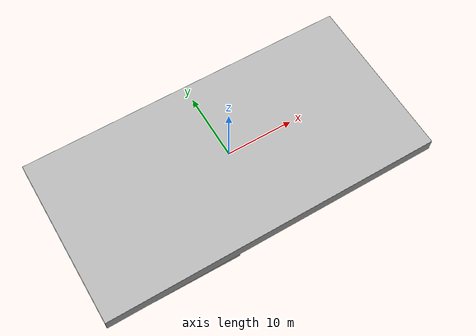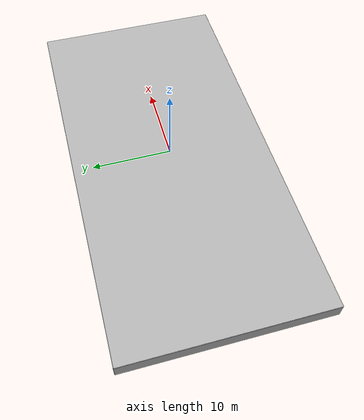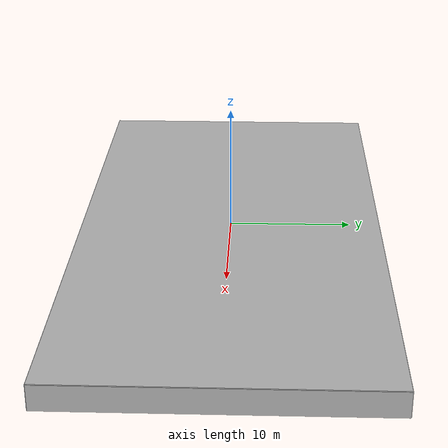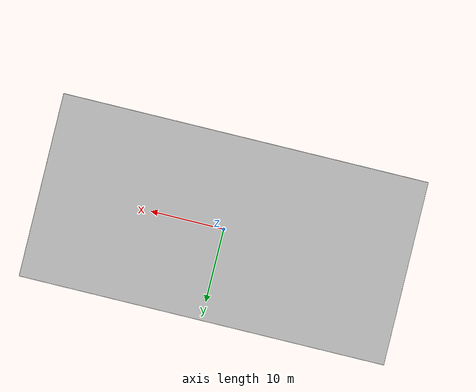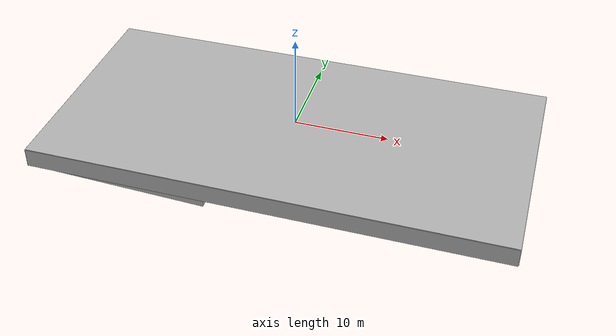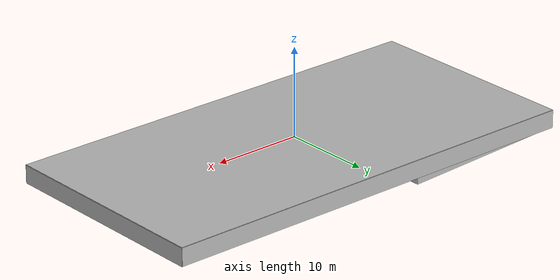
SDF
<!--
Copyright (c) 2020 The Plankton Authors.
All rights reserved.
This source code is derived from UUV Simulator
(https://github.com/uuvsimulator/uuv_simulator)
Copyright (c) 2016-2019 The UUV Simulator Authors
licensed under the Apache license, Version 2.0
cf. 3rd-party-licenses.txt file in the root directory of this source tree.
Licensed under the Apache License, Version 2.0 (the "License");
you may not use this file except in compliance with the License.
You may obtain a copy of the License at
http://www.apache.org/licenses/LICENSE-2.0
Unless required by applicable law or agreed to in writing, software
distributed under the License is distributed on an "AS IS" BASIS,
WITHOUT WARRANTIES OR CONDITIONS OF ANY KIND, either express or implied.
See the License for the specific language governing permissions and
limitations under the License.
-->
<?xml version="1.0" ?>
<sdf version="1.5">
  <world name="default">
    <physics name="default_physics" default="true" type="ode">
      <max_step_size>0.01</max_step_size>
      <real_time_factor>1</real_time_factor>
      <real_time_update_rate>100</real_time_update_rate>
      <ode>
        <solver>
          <type>quick</type>
          <iters>50</iters>
          <sor>1.2</sor>
        </solver>
      </ode>
    </physics>
    <scene>
      <ambient>0.2 0.2 0.2 1.0</ambient>
      <sky>
        <time>12</time>
        <clouds>
          <speed>12</speed>
        </clouds>
      </sky>
      <shadows>false</shadows>
      <fog>
        <color>0.1 0.2 0.3 1.0</color>
        <type>linear</type>
        <density>0.003</density>
        <start>10</start>
        <end>25</end>
      </fog>
      <grid>0</grid>
    </scene>

    <!-- Origin placed at Singapore Poly Swimming Pool  -->
    <spherical_coordinates>
      <latitude_deg>1.309562</latitude_deg>
      <longitude_deg>103.7745783</longitude_deg>
    </spherical_coordinates>

    <!-- Global light source -->
    <light type="directional" name="sun1">
      <cast_shadows>true</cast_shadows>
      <pose>-20 -20 20 0 0 0</pose>
      <diffuse>0.5 0.5 0.5 1</diffuse>
      <specular>0.2 0.2 0.2 1</specular>
      <attenuation>
        <range>40</range>
        <constant>0.9</constant>
        <linear>0.01</linear>
        <quadratic>0.001</quadratic>
      </attenuation>
      <direction>-0.5 0.1 -0.9</direction>
    </light>

    <!-- Global light source -->
    <light type="directional" name="sun2">
      <cast_shadows>true</cast_shadows>
      <pose>20 -20 20 0 0 0</pose>
      <diffuse>0.5 0.5 0.5 1</diffuse>
      <specular>0.2 0.2 0.2 1</specular>
      <attenuation>
        <range>40</range>
        <constant>0.9</constant>
        <linear>0.01</linear>
        <quadratic>0.001</quadratic>
      </attenuation>
      <direction>-0.5 0.1 -0.9</direction>
    </light>

    <light type="directional" name="sun3">
      <cast_shadows>true</cast_shadows>
      <pose>-20 20 20 0 0 0</pose>
      <diffuse>0.5 0.5 0.5 1</diffuse>
      <specular>0.2 0.2 0.2 1</specular>
      <attenuation>
        <range>40</range>
        <constant>0.9</constant>
        <linear>0.01</linear>
        <quadratic>0.001</quadratic>
      </attenuation>
      <direction>-0.5 0.1 -0.9</direction>
    </light>

    <light type="directional" name="sun4">
      <cast_shadows>true</cast_shadows>
      <pose>20 20 20 0 0 0</pose>
      <diffuse>0.5 0.5 0.5 1</diffuse>
      <specular>0.2 0.2 0.2 1</specular>
      <attenuation>
        <range>40</range>
        <constant>0.9</constant>
        <linear>0.01</linear>
        <quadratic>0.001</quadratic>
      </attenuation>
      <direction>-0.5 0.1 -0.9</direction>
    </light>

    <!-- Bounding box with sea surface -->
    <include>
      <uri>model://swimming_pool</uri>
      <pose>0 0 0 0 0 0</pose>
    </include>

    <include>
      <uri>model://red_flare</uri>
      <pose>6 -4 -2 0 0 0</pose>
    </include>

    <include>
      <uri>model://gate</uri>
      <pose>6 -.6 -2 0 0 0</pose>
    </include>

    <include>
      <name>yellow_flare_1</name>
      <uri>model://yellow_flare</uri>
      <pose>12 6 -2 0 0 0</pose>
    </include>

    <include>
      <name>yellow_flare_2</name>
      <uri>model://yellow_flare</uri>
      <pose>12 4.5 -2 0 0 0</pose>
    </include>

    <include>
      <uri>model://target_acquistion_area</uri>
      <pose>6  9 -1.95 0 0 0</pose>
    </include>

    <include>
      <name>qualification_gate_1</name>
      <uri>model://qualification_gate</uri>
      <pose>-15 8.5 0 0 0 0</pose>
    </include>
    <include>
      <name>qualification_gate_2</name>
      <uri>model://qualification_gate</uri>
      <pose>-15 -8.5 0 0 0 0</pose>
    </include>

    <plugin name="gazebo_ros" filename="libgazebo_ros_state.so">
      <ros>
        <namespace>/gazebo</namespace>
      </ros>
    </plugin>

    <plugin name="underwater_current_plugin" filename="libuuv_underwater_current_ros_plugin.so">
      <namespace>hydrodynamics</namespace>
      <constant_current>
        <topic>current_velocity</topic>
        <velocity>
          <mean>0</mean>
          <min>0</min>
          <max>5</max>
          <mu>0.0</mu>
          <noiseAmp>0.0</noiseAmp>
        </velocity>

        <horizontal_angle>
          <mean>0</mean>
          <min>-3.141592653589793238</min>
          <max>3.141592653589793238</max>
          <mu>0.0</mu>
          <noiseAmp>0.0</noiseAmp>
        </horizontal_angle>

        <vertical_angle>
          <mean>0</mean>
          <min>-3.141592653589793238</min>
          <max>3.141592653589793238</max>
          <mu>0.0</mu>
          <noiseAmp>0.0</noiseAmp>
        </vertical_angle>
      </constant_current>
    </plugin>

    <plugin name="sc_interface" filename="libuuv_sc_ros_interface_plugin.so"/>

    <gui fullscreen='0'>
      <camera name='user_camera'>
        <pose frame=''>0 0 0 0 0 0.5</pose>
        <view_controller>orbit</view_controller>
        <projection_type>perspective</projection_type>
      </camera>
    </gui>
  </world>
</sdf>

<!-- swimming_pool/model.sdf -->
<sdf version="1.5">
  <model name="swimming_pool">
    <static>true</static>
    <link name="link">

      <visual name="ground1">
        <cast_shadows>false</cast_shadows>
        <pose>-24.1 -0 -1.64 0 0 0</pose>
        <geometry>
          <box>
            <size>1.8 25 .72</size>
          </box>
        </geometry>
        <material>
          <script>
            <uri>file://media/materials/scripts/ground_1.material</uri>
            <name>SAUVC2019/FloorTiles1</name>
          </script>
        </material>
      </visual>

      <collision name="ground1">
        <pose>-24.1 -0 -1.64 0 0 0</pose>
        <geometry>
          <box>
            <size>1.8 25 .72</size>
          </box>
        </geometry>
      </collision>

      <visual name="ground2">
        <cast_shadows>false</cast_shadows>
        <pose>-14.465 0 -1.9997  0 0.041119666044899805 0</pose>
        <geometry>
          <box>
            <size>17.514805165916062 25 .72</size>
          </box>
        </geometry>
        <material>
          <script>
            <uri>file://media/materials/scripts/ground_2.material</uri>
            <name>SAUVC2019/FloorTiles2</name>
          </script>
        </material>
      </visual>

      <collision name="ground2">
        <pose>-14.465 0 -1.9997  0 0.041119666044899805 0</pose>
        <geometry>
          <box>
            <size>17.514805165916062 25 .72</size>
          </box>
        </geometry>
      </collision>

      <visual name="ground3">
        <cast_shadows>false</cast_shadows>
        <pose>9.65 0 -2.01 0 0 0</pose>
        <geometry>
          <box>
            <size>30.7 25 0.005</size>
          </box>
        </geometry>
        <material>
          <script>
            <uri>file://media/materials/scripts/ground_3.material</uri>
            <name>SAUVC2019/FloorTiles3</name>
          </script>
        </material>
      </visual>

      <collision name="ground3">
        <pose>9.65 0 -2.01 0 0 0</pose>
        <geometry>
          <box>
            <size>30.7 25 0.005</size>
          </box>
        </geometry>
      </collision>

      <visual name="surface">
        <cast_shadows>false</cast_shadows>
        <pose>0 0 0 0 0 0</pose>
        <geometry>
          <box>
            <size>50 25 .1</size>
          </box>
        </geometry>
        <material>
          <script>
            <uri>file://media/materials/scripts/water.material</uri>
            <name>SAUVC2019/StaticWater</name>
          </script>
        </material>
      </visual>

      <visual name="north">
        <cast_shadows>false</cast_shadows>
        <pose>25 0 -1 0 0 0</pose>
        <geometry>
          <box>
            <size>.1 25 2</size>
          </box>
        </geometry>
        <material>
          <script>
            <uri>file://media/materials/scripts/short_wall_tiles.material</uri>
            <name>SAUVC2019/ShortWallTiles</name>
          </script>
        </material>
      </visual>

      <visual name="south">
        <cast_shadows>false</cast_shadows>
        <pose>-25 0 -1 0 0 0</pose>
        <geometry>
          <box>
            <size>.1 25 2</size>
          </box>
        </geometry>
        <material>
          <script>
            <uri>file://media/materials/scripts/short_wall_tiles.material</uri>
            <name>SAUVC2019/ShortWallTiles</name>
          </script>
        </material>
      </visual>

      <visual name="east">
        <cast_shadows>false</cast_shadows>
        <pose>0 -12.5 -1 0 0 0</pose>
        <geometry>
          <box>
            <size>50 .1 2</size>
          </box>
        </geometry>
        <material>
          <script>
            <uri>file://media/materials/scripts/long_wall_tiles.material</uri>
            <name>SAUVC2019/LongWallTiles</name>
          </script>
        </material>
      </visual>

      <visual name="west">
        <cast_shadows>false</cast_shadows>
        <pose>0 12.5 -1 0 0 0</pose>
        <geometry>
          <box>
            <size>50 .1 2</size>
          </box>
        </geometry>
        <material>
          <script>
            <uri>file://media/materials/scripts/long_wall_tiles.material</uri>
            <name>SAUVC2019/LongWallTiles</name>
          </script>
        </material>
      </visual>
    </link>
  </model>
</sdf>

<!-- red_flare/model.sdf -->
<sdf version="1.5">
  <model name="red_flare">
    <static>false</static>
    <link name="link">

      <collision name="flare">
        <pose>0 0 0.75 0 0 0</pose>
        <geometry>
          <cylinder>
            <radius>0.075</radius>
            <length>1.5</length>
          </cylinder>
        </geometry>
      </collision>

      <visual name="flare">
        <cast_shadows>false</cast_shadows>
        <pose>0 0 0.75 0 0 0</pose>
        <geometry>
          <cylinder>
            <radius>0.075</radius>
            <length>1.5</length>
          </cylinder>
        </geometry>
        <material>
          <script>
            <uri>file://media/materials/scripts/colors.material</uri>
            <name>SAUVC/Red</name>
          </script>
        </material>
      </visual>

    </link>
  </model>
</sdf>

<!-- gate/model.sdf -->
<sdf version="1.5">
  <model name="gate">
    <static>true</static>
    <link name="link">

      <collision name="left">
        <pose>-0.75 0 0.75 0 0 0</pose>
        <geometry>
          <cylinder>
            <radius>0.02</radius>
            <length>1.5</length>
          </cylinder>
        </geometry>
      </collision>

      <collision name="right">
        <pose>0.75 0 0.75 0 0 0</pose>
        <geometry>
          <cylinder>
            <radius>0.02</radius>
            <length>1.5</length>
          </cylinder>
        </geometry>
      </collision>

      <collision name="top">
        <pose>0 0 1.48 0 1.57 0</pose>
        <geometry>
          <cylinder>
            <radius>0.02</radius>
            <length>1.5</length>
          </cylinder>
        </geometry>
      </collision>

      <visual name="left">
        <cast_shadows>false</cast_shadows>
        <pose>-0.75 0 0.75 0 0 0</pose>
        <geometry>
          <cylinder>
            <radius>0.02</radius>
            <length>1.5</length>
          </cylinder>
        </geometry>
        <material>
          <script>
            <uri>file://media/materials/scripts/colors.material</uri>
            <name>SAUVC/Red</name>
          </script>
        </material>
      </visual>

      <visual name="right">
        <cast_shadows>false</cast_shadows>
        <pose>0.75 0 0.75 0 0 0</pose>
        <geometry>
          <cylinder>
            <radius>0.02</radius>
            <length>1.5</length>
          </cylinder>
        </geometry>
        <material>
          <script>
            <uri>file://media/materials/scripts/colors.material</uri>
            <name>SAUVC/Green</name>
          </script>
        </material>
      </visual>

      <visual name="top">
        <cast_shadows>false</cast_shadows>
        <pose>0 0 1.48 0 1.57 0</pose>
        <geometry>
          <cylinder>
            <radius>0.02</radius>
            <length>1.5</length>
          </cylinder>
        </geometry>
        <material>
          <script>
            <uri>file://media/materials/scripts/colors.material</uri>
            <name>SAUVC/Black</name>
          </script>
        </material>
      </visual>

      <visual name="bottom">
        <cast_shadows>false</cast_shadows>
        <pose>0 0 .05 0 0 0</pose>
        <geometry>
          <box>
            <size>1.8 .4 .02</size>
          </box>
        </geometry>
        <material>
          <script>
            <uri>file://media/materials/scripts/colors.material</uri>
            <name>SAUVC/Yellow</name>
          </script>
        </material>
      </visual>

    </link>
  </model>
</sdf>

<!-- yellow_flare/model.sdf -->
<sdf version="1.5">
  <model name="yellow_flare">
    <static>false</static>
    <link name="link">

      <collision name="flare">
        <pose>0 0 0.4 0 0 0</pose>
        <geometry>
          <cylinder>
            <radius>0.02</radius>
            <length>0.8</length>
          </cylinder>
        </geometry>
      </collision>

      <visual name="flare">
        <cast_shadows>false</cast_shadows>
        <pose>0 0 0.4 0 0 0</pose>
        <geometry>
          <cylinder>
            <radius>0.02</radius>
            <length>0.8</length>
          </cylinder>
        </geometry>
        <material>
          <script>
            <uri>file://media/materials/scripts/colors.material</uri>
            <name>SAUVC/Yellow</name>
          </script>
        </material>
      </visual>

      <visual name="ball">
        <cast_shadows>false</cast_shadows>
        <pose>0 0 0.82 0 0 0</pose>
        <geometry>
          <sphere>
            <radius>0.03</radius>
          </sphere>
        </geometry>
        <material>
          <script>
            <uri>file://media/materials/scripts/colors.material</uri>
            <name>SAUVC/White</name>
          </script>
        </material>
      </visual>

      <visual name="stand">
        <cast_shadows>false</cast_shadows>
        <pose>0 0 0.01 0 0 0</pose>
        <geometry>
          <cylinder>
            <radius>0.1</radius>
            <length>0.02</length>
          </cylinder>
        </geometry>
        <material>
          <script>
            <uri>file://media/materials/scripts/colors.material</uri>
            <name>SAUVC/Yellow</name>
          </script>
        </material>
      </visual>

    </link>
  </model>
</sdf>

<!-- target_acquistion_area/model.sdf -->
<sdf version="1.5">
  <model name="target_acquistion_area">
    <static>true</static>
    <link name="link">

      <visual name="target_acquistion_area">
        <cast_shadows>false</cast_shadows>
        <pose>0 0 .005 0 0 0</pose>
        <geometry>
          <box>
            <size>8 2 .01</size>
          </box>
        </geometry>
        <material>
          <script>
            <uri>file://media/materials/scripts/colors.material</uri>
            <name>SAUVC/Green</name>
          </script>
        </material>
      </visual>
    </link>

    <include>
      <name>left_red_drum</name>
      <uri>model://red_drum</uri>
      <pose>-2.4 0 0 0 0 0</pose>
    </include>

    <include>
      <uri>model://blue_drum</uri>
      <pose>-0.8 0 0 0 0 0</pose>
    </include>

    <include>
      <name>middle_red_drum</name>
      <uri>model://red_drum</uri>
      <pose>0.8 0 0 0 0 0</pose>
    </include>

    <include>
      <name>right_red_drum</name>
      <uri>model://red_drum</uri>
      <pose>2.4 0 0 0 0 0</pose>
    </include>

  </model>
</sdf>

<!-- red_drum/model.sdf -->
<sdf version="1.5">
  <model name="red_drum">
    <static>true</static>
    <link name="link">

      <collision name="drum">
        <pose>0 0 0.15 0 0 0</pose>
        <geometry>
          <mesh>
            <scale>0.001 0.001 0.001</scale>
            <uri>model://red_drum/bucket.stl</uri>
          </mesh>
        </geometry>
      </collision>

      <visual name="drum">
        <cast_shadows>false</cast_shadows>
        <pose>0 0 0.15 0 0 0</pose>
        <geometry>
          <mesh>
            <scale>0.001 0.001 0.001</scale>
            <uri>model://red_drum/bucket.stl</uri>
          </mesh>
          <scale>0.001 0.001 0.001</scale>
        </geometry>
        <material>
          <script>
            <uri>file://media/materials/scripts/colors.material</uri>
            <name>SAUVC/Red</name>
          </script>
        </material>
      </visual>

    </link>
  </model>
</sdf>

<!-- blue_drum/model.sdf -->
<sdf version="1.5">
  <model name="blue_drum">
    <static>true</static>
    <link name="link">

      <collision name="drum">
        <pose>0 0 0.15 0 0 0</pose>
        <geometry>
          <mesh>
            <scale>0.001 0.001 0.001</scale>
            <uri>model://red_drum/bucket.stl</uri>
          </mesh>

        </geometry>
      </collision>

      <visual name="drum">
        <cast_shadows>false</cast_shadows>
        <pose>0 0 0.15 0 0 0</pose>
        <geometry>
          <mesh>
            <scale>0.001 0.001 0.001</scale>
            <uri>model://red_drum/bucket.stl</uri>
          </mesh>
        </geometry>
        <material>
          <script>
            <uri>file://media/materials/scripts/colors.material</uri>
            <name>SAUVC/Blue</name>
          </script>
        </material>
      </visual>

    </link>
  </model>
</sdf>

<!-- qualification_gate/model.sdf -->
<sdf version="1.5">
  <model name="qualification_gate">
    <static>true</static>
    <link name="link">

      <collision name="left">
        <pose>0 0.75 -0.5 0 0 0</pose>
        <geometry>
          <cylinder>
            <radius>0.02</radius>
            <length>1</length>
          </cylinder>
        </geometry>
      </collision>

      <collision name="right">
        <pose>0 -0.75 -0.5 0 0 0</pose>
        <geometry>
          <cylinder>
            <radius>0.02</radius>
            <length>1</length>
          </cylinder>
        </geometry>
      </collision>

      <collision name="top">
        <pose>0 0 0 1.57 0 0</pose>
        <geometry>
          <cylinder>
            <radius>0.02</radius>
            <length>1.5</length>
          </cylinder>
        </geometry>
      </collision>

      <visual name="left">
        <cast_shadows>false</cast_shadows>
        <pose>0 0.75 -0.5 0 0 0</pose>
        <geometry>
          <cylinder>
            <radius>0.02</radius>
            <length>1</length>
          </cylinder>
        </geometry>
        <material>
          <script>
            <uri>file://media/materials/scripts/colors.material</uri>
            <name>SAUVC/Yellow</name>
          </script>
        </material>
      </visual>

      <visual name="right">
        <cast_shadows>false</cast_shadows>
        <pose>0 -0.75 -0.5 0 0 0</pose>
        <geometry>
          <cylinder>
            <radius>0.02</radius>
            <length>1</length>
          </cylinder>
        </geometry>
        <material>
          <script>
            <uri>file://media/materials/scripts/colors.material</uri>
            <name>SAUVC/Yellow</name>
          </script>
        </material>
      </visual>

      <visual name="top">
        <cast_shadows>false</cast_shadows>
        <pose>0 0 0 1.57 0 0</pose>
        <geometry>
          <cylinder>
            <radius>0.02</radius>
            <length>1.5</length>
          </cylinder>
        </geometry>
        <material>
          <script>
            <uri>file://media/materials/scripts/colors.material</uri>
            <name>SAUVC/White</name>
          </script>
        </material>
      </visual>

    </link>
  </model>
</sdf>
